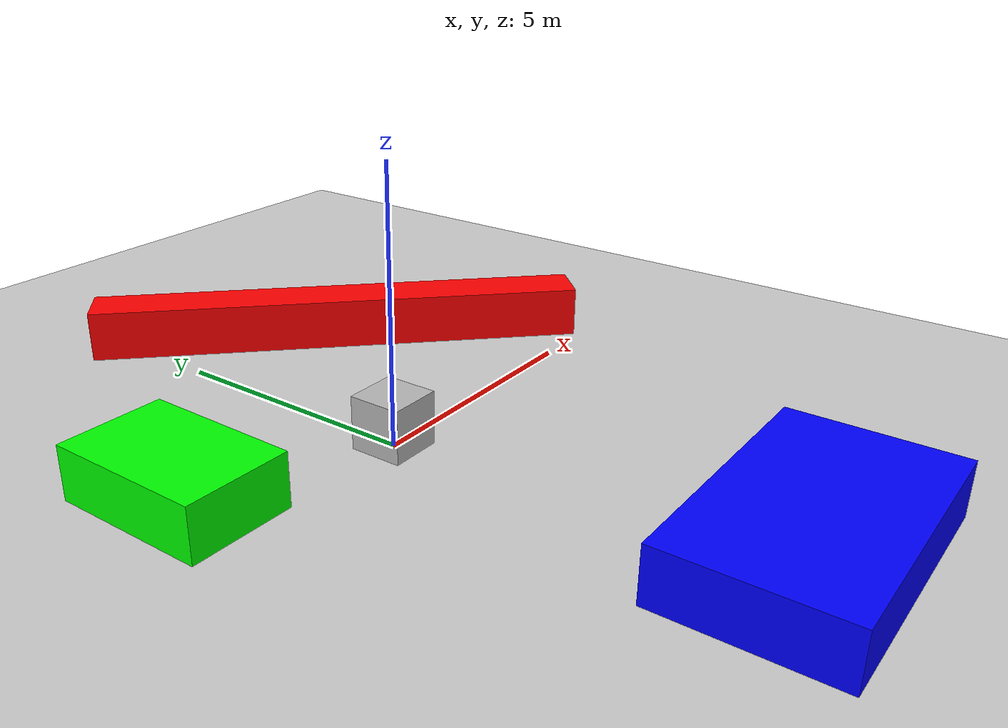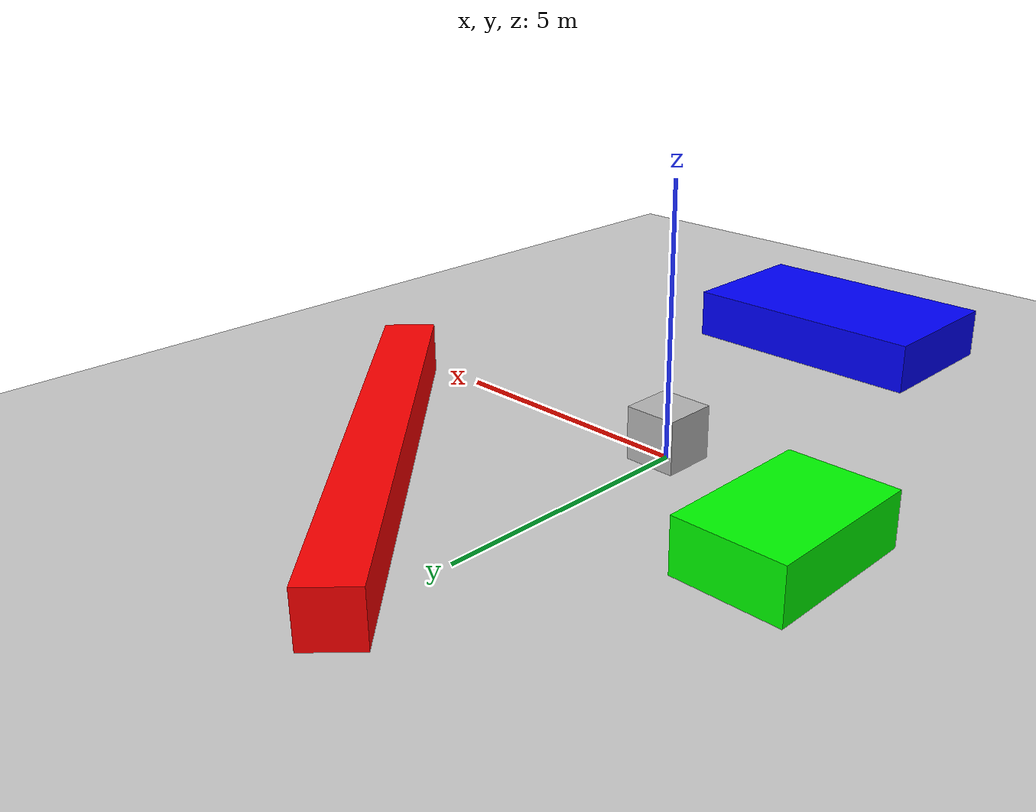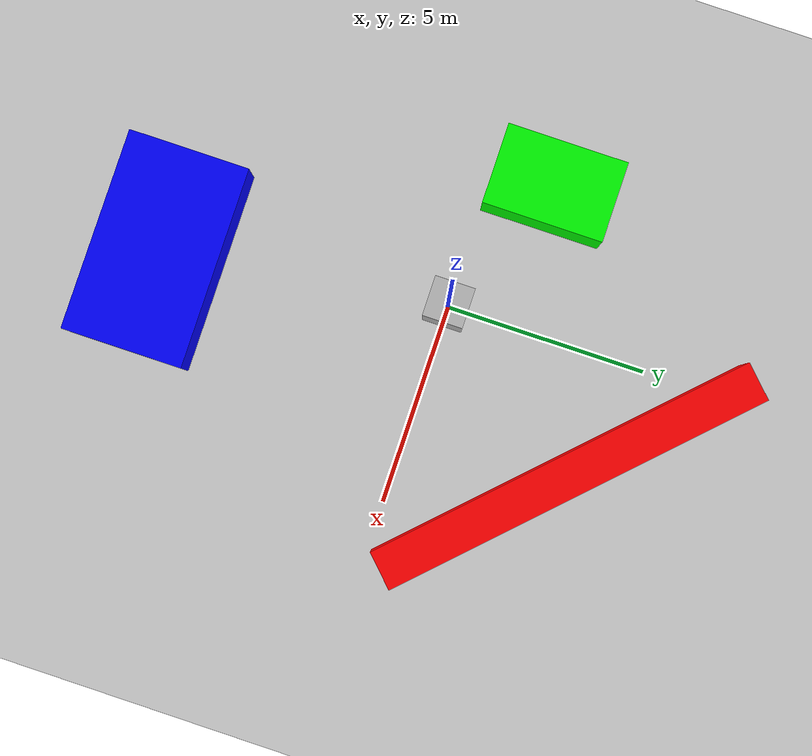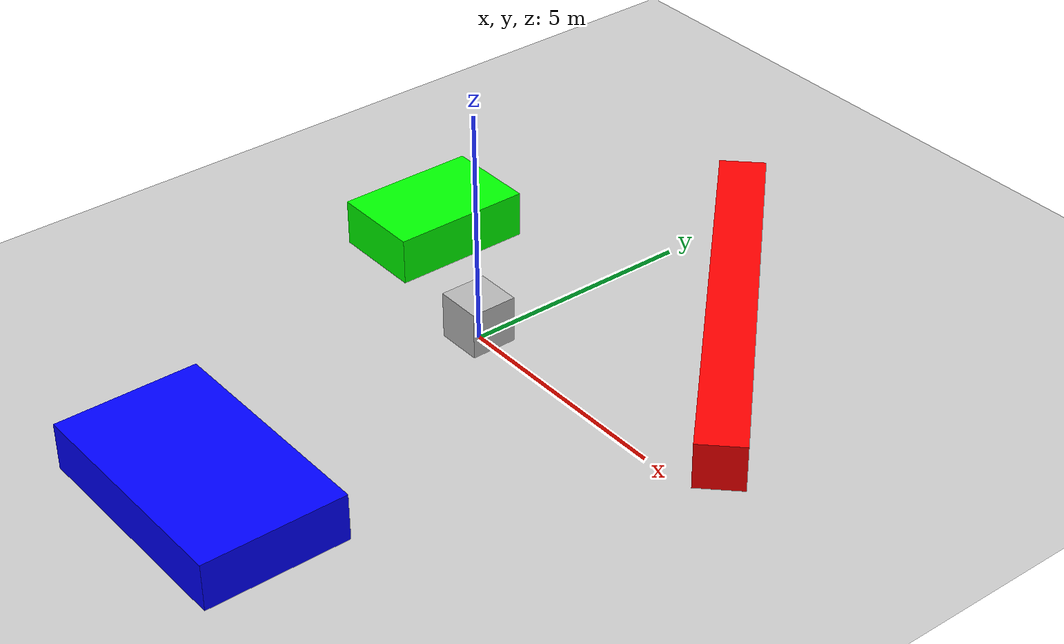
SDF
<sdf version="1.7">
 <world name="default">
  <light name="sun" type="directional">
   <pose>0 0 10 0 -0 0</pose>
   <diffuse>0.8 0.8 0.8 1</diffuse>
   <specular>0.2 0.2 0.2 1</specular>
   <attenuation>
    <range>1000</range>
    <constant>0.9</constant>
    <linear>0.01</linear>
    <quadratic>0.001</quadratic>
   </attenuation>
   <direction>-0.5 0.1 -0.9</direction>
   <spot><inner_angle>0</inner_angle><outer_angle>0</outer_angle><falloff>0</falloff></spot>
  </light>
  <model name="ground_plane">
   <static>1</static>
   <link name="link">
    <collision name="collision">
     <geometry><plane><normal>0 0 1</normal><size>100 100</size></plane></geometry>
     <surface>
      <contact><collide_bitmask>65535</collide_bitmask></contact>
      <friction><ode><mu>100</mu><mu2>50</mu2></ode></friction>
     </surface>
    </collision>
    <visual name="visual">
     <cast_shadows>0</cast_shadows>
     <geometry><plane><normal>0 0 1</normal><size>100 100</size></plane></geometry>
     <material>
      <script><uri>file://media/materials/scripts/gazebo.material</uri><name>Gazebo/Grey</name></script>
     </material>
    </visual>
   </link>
  </model>
  <gravity>0 0 -9.8</gravity>
  <magnetic_field>6e-06 2.3e-05 -4.2e-05</magnetic_field>
  <atmosphere type="adiabatic"/>
  <physics type="ode">
   <max_step_size>0.001</max_step_size>
   <real_time_factor>1</real_time_factor>
   <real_time_update_rate>1000</real_time_update_rate>
  </physics>
  <scene><ambient>0.4 0.4 0.4 1</ambient><background>0.7 0.7 0.7 1</background><shadows>1</shadows></scene>
  <spherical_coordinates>
   <surface_model>EARTH_WGS84</surface_model>
   <latitude_deg>0</latitude_deg>
   <longitude_deg>0</longitude_deg>
   <elevation>0</elevation>
   <heading_deg>0</heading_deg>
  </spherical_coordinates>
  <model name="red_cube">
   <pose>3 4 0.5 0 0 0.785</pose>
   <static>true</static>
   <link name="link">
    <visual name="visual">
     <geometry><box><size>1 10 1</size></box></geometry>
     <material><ambient>1 0 0 1</ambient></material>
    </visual>
    <collision name="collision"><geometry><box><size>1 1 1</size></box></geometry></collision>
   </link>
  </model>
  <model name="green_cube">
   <pose>-3.5 1.5 0.5 0 0 0</pose>
   <static>true</static>
   <link name="link">
    <visual name="visual">
     <geometry><box><size>2 3 1</size></box></geometry>
     <material><ambient>0 1 0 1</ambient></material>
    </visual>
    <collision name="collision"><geometry><box><size>1 1 1</size></box></geometry></collision>
   </link>
  </model>
  <model name="blue_cube">
   <pose>1 -7 0.5 0 0 0</pose>
   <static>true</static>
   <link name="link">
    <visual name="visual">
     <geometry><box><size>5 3 1</size></box></geometry>
     <material><ambient>0 0 1 1</ambient></material>
    </visual>
    <collision name="collision"><geometry><box><size>1 1 1</size></box></geometry></collision>
   </link>
  </model>
  <model name="camera_cube">
   <static>true</static>
   <pose>0 0 0.5 0 0 0</pose>
   <link name="base_link">
    <visual name="visual"><geometry><box><size>1 1 1</size></box></geometry></visual>
    <sensor name="front_camera" type="camera">
     <pose>0.5 0 0 0 0 0</pose>
     <camera><horizontal_fov>1.047</horizontal_fov><image><width>800</width><height>600</height></image></camera>
     <always_on>1</always_on>
     <update_rate>30</update_rate>
     <visualize>true</visualize>
     <plugin name="camera_controller" filename="libgazebo_ros_camera.so">
      <robotNamespace>/</robotNamespace>
      <cameraName>front_camera</cameraName>
      <imageTopicName>image_raw</imageTopicName>
      <cameraInfoTopicName>camera_info</cameraInfoTopicName>
     </plugin>
    </sensor>
    <sensor name="back_camera" type="camera">
     <pose>-0.5 0 0 0 0 3.142</pose>
     <camera><horizontal_fov>1.047</horizontal_fov><image><width>800</width><height>600</height></image></camera>
     <always_on>1</always_on>
     <update_rate>30</update_rate>
     <visualize>true</visualize>
     <plugin name="camera_controller" filename="libgazebo_ros_camera.so">
      <robotNamespace>/</robotNamespace>
      <cameraName>back_camera</cameraName>
      <imageTopicName>image_raw</imageTopicName>
      <cameraInfoTopicName>camera_info</cameraInfoTopicName>
     </plugin>
    </sensor>
    <sensor name="left_camera" type="camera">
     <pose>0 0.5 0 0 0 4.712</pose>
     <camera><horizontal_fov>1.047</horizontal_fov><image><width>800</width><height>600</height></image></camera>
     <always_on>1</always_on>
     <update_rate>30</update_rate>
     <visualize>true</visualize>
     <plugin name="camera_controller" filename="libgazebo_ros_camera.so">
      <robotNamespace>/</robotNamespace>
      <cameraName>left_camera</cameraName>
      <imageTopicName>image_raw</imageTopicName>
      <cameraInfoTopicName>camera_info</cameraInfoTopicName>
     </plugin>
    </sensor>
    <sensor name="right_camera" type="camera">
     <pose>0 -0.5 0 0 0 1.571</pose>
     <camera><horizontal_fov>1.047</horizontal_fov><image><width>800</width><height>600</height></image></camera>
     <always_on>1</always_on>
     <update_rate>30</update_rate>
     <visualize>true</visualize>
     <plugin name="camera_controller" filename="libgazebo_ros_camera.so">
      <robotNamespace>/</robotNamespace>
      <cameraName>right_camera</cameraName>
      <imageTopicName>image_raw</imageTopicName>
      <cameraInfoTopicName>camera_info</cameraInfoTopicName>
     </plugin>
    </sensor>
   </link>
   <plugin name="link_pose_control" filename="liblink_pose_control.so"/>
  </model>
 </world>
</sdf>
